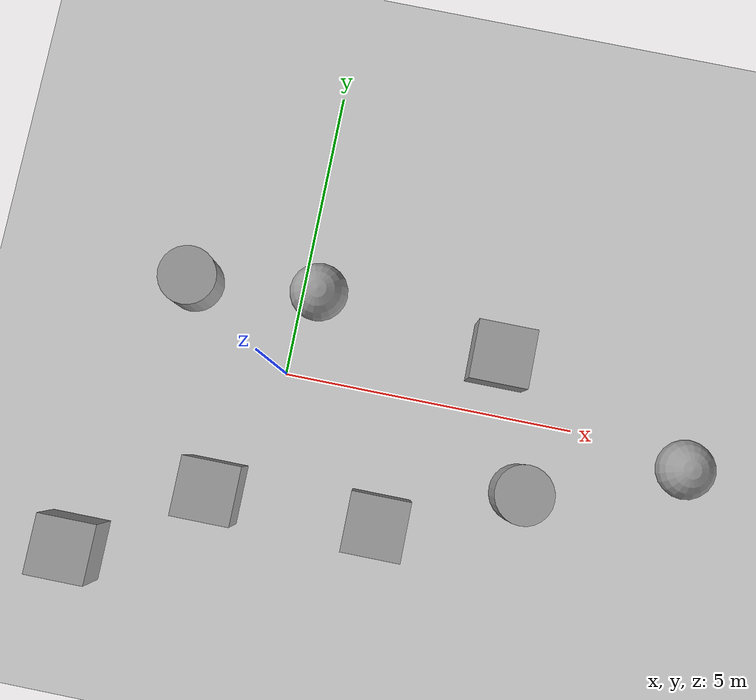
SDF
<sdf version="1.6">
 <world name="default">
  <light name="sun" type="directional">
   <pose>0 0 10 0 -0 0</pose>
   <diffuse>0.8 0.8 0.8 1</diffuse>
   <specular>0.2 0.2 0.2 1</specular>
   <attenuation>
    <range>1000</range>
    <constant>0.9</constant>
    <linear>0.01</linear>
    <quadratic>0.001</quadratic>
   </attenuation>
   <direction>-0.5 0.1 -0.9</direction>
  </light>
  <model name="ground_plane">
   <static>1</static>
   <link name="link">
    <collision name="collision">
     <geometry><plane><normal>0 0 1</normal><size>100 100</size></plane></geometry>
     <surface>
      <contact><collide_bitmask>65535</collide_bitmask></contact>
      <friction><ode><mu>100</mu><mu2>50</mu2></ode></friction>
     </surface>
    </collision>
    <visual name="visual">
     <cast_shadows>0</cast_shadows>
     <geometry><plane><normal>0 0 1</normal><size>100 100</size></plane></geometry>
     <material>
      <script><uri>file://media/materials/scripts/gazebo.material</uri><name>Gazebo/Grey</name></script>
     </material>
    </visual>
   </link>
  </model>
  <gravity>0 0 -9.8</gravity>
  <magnetic_field>6e-06 2.3e-05 -4.2e-05</magnetic_field>
  <atmosphere type="adiabatic"/>
  <physics name="default_physics" default="0" type="ode">
   <max_step_size>0.001</max_step_size>
   <real_time_factor>1</real_time_factor>
   <real_time_update_rate>1000</real_time_update_rate>
  </physics>
  <scene><ambient>0.4 0.4 0.4 1</ambient><background>0.7 0.7 0.7 1</background><shadows>1</shadows></scene>
  <audio><device>default</device></audio>
  <spherical_coordinates>
   <surface_model>EARTH_WGS84</surface_model>
   <latitude_deg>0</latitude_deg>
   <longitude_deg>0</longitude_deg>
   <elevation>0</elevation>
   <heading_deg>0</heading_deg>
  </spherical_coordinates>
  <model name="unit_box">
   <pose>2.0194 -2.18774 0.5 0 -0 0</pose>
   <link name="link">
    <inertial>
     <mass>1</mass>
     <inertia>
      <ixx>0.166667</ixx>
      <ixy>0</ixy>
      <ixz>0</ixz>
      <iyy>0.166667</iyy>
      <iyz>0</iyz>
      <izz>0.166667</izz>
     </inertia>
    </inertial>
    <collision name="collision"><geometry><box><size>1 1 1</size></box></geometry></collision>
    <visual name="visual">
     <geometry><box><size>1 1 1</size></box></geometry>
     <material>
      <script><name>Gazebo/Grey</name><uri>file://media/materials/scripts/gazebo.material</uri></script>
     </material>
    </visual>
   </link>
  </model>
  <model name="unit_box_0">
   <pose>3.5429 0.991387 0.5 0 -0 0</pose>
   <link name="link">
    <inertial>
     <mass>1</mass>
     <inertia>
      <ixx>0.166667</ixx>
      <ixy>0</ixy>
      <ixz>0</ixz>
      <iyy>0.166667</iyy>
      <iyz>0</iyz>
      <izz>0.166667</izz>
     </inertia>
    </inertial>
    <collision name="collision"><geometry><box><size>1 1 1</size></box></geometry></collision>
    <visual name="visual">
     <geometry><box><size>1 1 1</size></box></geometry>
     <material>
      <script><name>Gazebo/Grey</name><uri>file://media/materials/scripts/gazebo.material</uri></script>
     </material>
    </visual>
   </link>
  </model>
  <model name="unit_cylinder">
   <pose>4.29652 -1.21295 0.499993 -3e-06 -4e-06 -0</pose>
   <link name="link">
    <inertial>
     <mass>1</mass>
     <inertia><ixx>0.145833</ixx><ixy>0</ixy><ixz>0</ixz><iyy>0.145833</iyy><iyz>0</iyz><izz>0.125</izz></inertia>
    </inertial>
    <collision name="collision">
     <geometry><cylinder><radius>0.5</radius><length>1</length></cylinder></geometry>
    </collision>
    <visual name="visual">
     <geometry><cylinder><radius>0.5</radius><length>1</length></cylinder></geometry>
     <material>
      <script><name>Gazebo/Grey</name><uri>file://media/materials/scripts/gazebo.material</uri></script>
     </material>
    </visual>
   </link>
  </model>
  <model name="unit_sphere">
   <pose>6.92061 -0.273845 0.5 0 -0 0</pose>
   <link name="link">
    <inertial>
     <mass>1</mass>
     <inertia><ixx>0.1</ixx><ixy>0</ixy><ixz>0</ixz><iyy>0.1</iyy><iyz>0</iyz><izz>0.1</izz></inertia>
    </inertial>
    <collision name="collision"><geometry><sphere><radius>0.5</radius></sphere></geometry></collision>
    <visual name="visual">
     <geometry><sphere><radius>0.5</radius></sphere></geometry>
     <material>
      <script><name>Gazebo/Grey</name><uri>file://media/materials/scripts/gazebo.material</uri></script>
     </material>
    </visual>
   </link>
  </model>
  <model name="unit_box_1">
   <pose>-0.816849 -2.1665 0.5 -0 -0 -0</pose>
   <link name="link">
    <inertial>
     <mass>1</mass>
     <inertia>
      <ixx>0.166667</ixx>
      <ixy>0</ixy>
      <ixz>0</ixz>
      <iyy>0.166667</iyy>
      <iyz>0</iyz>
      <izz>0.166667</izz>
     </inertia>
    </inertial>
    <collision name="collision"><geometry><box><size>1 1 1</size></box></geometry></collision>
    <visual name="visual">
     <geometry><box><size>1 1 1</size></box></geometry>
     <material>
      <script><name>Gazebo/Grey</name><uri>file://media/materials/scripts/gazebo.material</uri></script>
     </material>
    </visual>
   </link>
  </model>
  <model name="unit_cylinder_0">
   <pose>-1.88029 1.24935 0.499993 -3e-06 -4e-06 -0</pose>
   <link name="link">
    <inertial>
     <mass>1</mass>
     <inertia><ixx>0.145833</ixx><ixy>0</ixy><ixz>0</ixz><iyy>0.145833</iyy><iyz>0</iyz><izz>0.125</izz></inertia>
    </inertial>
    <collision name="collision">
     <geometry><cylinder><radius>0.5</radius><length>1</length></cylinder></geometry>
    </collision>
    <visual name="visual">
     <geometry><cylinder><radius>0.5</radius><length>1</length></cylinder></geometry>
     <material>
      <script><name>Gazebo/Grey</name><uri>file://media/materials/scripts/gazebo.material</uri></script>
     </material>
    </visual>
   </link>
  </model>
  <model name="unit_box_2">
   <pose>-2.92491 -3.53708 0.5 0 -0 0</pose>
   <link name="link">
    <inertial>
     <mass>1</mass>
     <inertia>
      <ixx>0.166667</ixx>
      <ixy>0</ixy>
      <ixz>0</ixz>
      <iyy>0.166667</iyy>
      <iyz>0</iyz>
      <izz>0.166667</izz>
     </inertia>
    </inertial>
    <collision name="collision"><geometry><box><size>1 1 1</size></box></geometry></collision>
    <visual name="visual">
     <geometry><box><size>1 1 1</size></box></geometry>
     <material>
      <script><name>Gazebo/Grey</name><uri>file://media/materials/scripts/gazebo.material</uri></script>
     </material>
    </visual>
   </link>
  </model>
  <model name="unit_sphere_0">
   <pose>0.298232 1.45721 0.5 0 -0 0</pose>
   <link name="link">
    <inertial>
     <mass>1</mass>
     <inertia><ixx>0.1</ixx><ixy>0</ixy><ixz>0</ixz><iyy>0.1</iyy><iyz>0</iyz><izz>0.1</izz></inertia>
    </inertial>
    <collision name="collision"><geometry><sphere><radius>0.5</radius></sphere></geometry></collision>
    <visual name="visual">
     <geometry><sphere><radius>0.5</radius></sphere></geometry>
     <material>
      <script><name>Gazebo/Grey</name><uri>file://media/materials/scripts/gazebo.material</uri></script>
     </material>
    </visual>
   </link>
  </model>
 </world>
</sdf>
